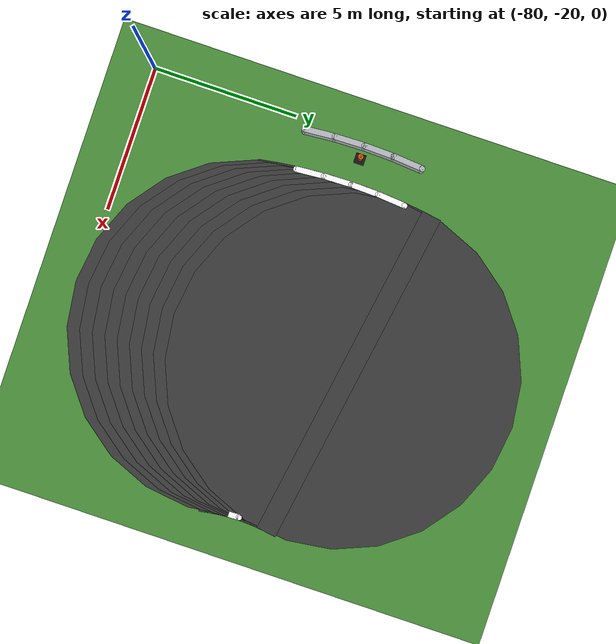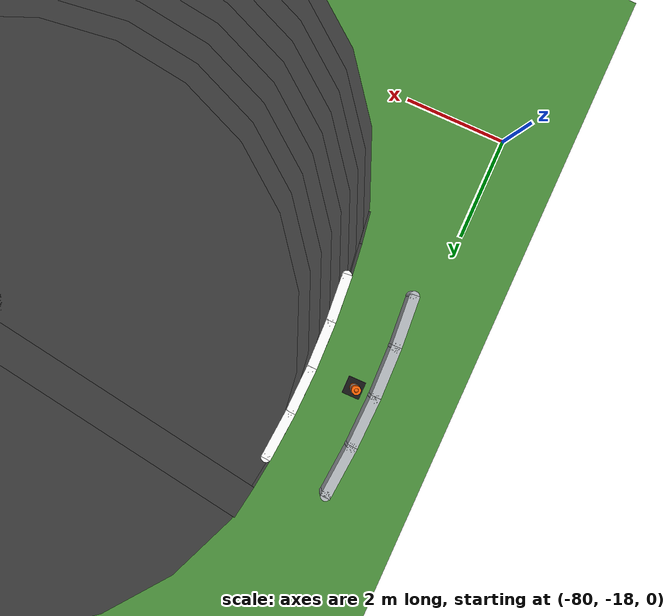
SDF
<sdf version="1.6">
 <world name="sem_silesia_ring_2026">
  <model name="ground_plane">
   <static>true</static>
   <link name="link">
    <collision name="collision">
     <geometry><plane><normal>0 0 1</normal><size>600 600</size></plane></geometry>
     <surface><friction><ode><mu>0.6</mu><mu2>0.6</mu2></ode></friction></surface>
    </collision>
    <visual name="visual">
     <geometry><plane><normal>0 0 1</normal><size>600 600</size></plane></geometry>
     <material><ambient>0.28 0.55 0.22 1</ambient><diffuse>0.28 0.55 0.22 1</diffuse></material>
    </visual>
   </link>
  </model>
  <model name="road_L_s40">
   <static>true</static>
   <pose>-72.3461 -10.5446 0.0030 0 0 4.5553</pose>
   <link name="link">
    <visual name="v">
     <geometry><box><size>0.6957 12.0000 0.0060</size></box></geometry>
     <material><ambient>0.22 0.22 0.22 1</ambient><diffuse>0.22 0.22 0.22 1</diffuse></material>
    </visual>
    <collision name="c">
     <geometry><box><size>0.6957 12.0000 0.0060</size></box></geometry>
     <surface><friction><ode><mu>0.9</mu><mu2>0.9</mu2></ode></friction></surface>
    </collision>
   </link>
  </model>
  <model name="road_L_jnt41">
   <static>true</static>
   <pose>-72.3784 -10.7603 0.0030 0 0 0</pose>
   <link name="link">
    <visual name="v">
     <geometry><cylinder><radius>6.0000</radius><length>0.0060</length></cylinder></geometry>
     <material><ambient>0.22 0.22 0.22 1</ambient><diffuse>0.22 0.22 0.22 1</diffuse></material>
    </visual>
    <collision name="c">
     <geometry><cylinder><radius>6.0000</radius><length>0.0060</length></cylinder></geometry>
     <surface><friction><ode><mu>0.9</mu><mu2>0.9</mu2></ode></friction></surface>
    </collision>
   </link>
  </model>
  <model name="road_L_s41">
   <static>true</static>
   <pose>-72.4068 -10.9766 0.0030 0 0 4.5902</pose>
   <link name="link">
    <visual name="v">
     <geometry><box><size>0.6957 12.0000 0.0060</size></box></geometry>
     <material><ambient>0.22 0.22 0.22 1</ambient><diffuse>0.22 0.22 0.22 1</diffuse></material>
    </visual>
    <collision name="c">
     <geometry><box><size>0.6957 12.0000 0.0060</size></box></geometry>
     <surface><friction><ode><mu>0.9</mu><mu2>0.9</mu2></ode></friction></surface>
    </collision>
   </link>
  </model>
  <model name="road_L_jnt42">
   <static>true</static>
   <pose>-72.4315 -11.1934 0.0030 0 0 0</pose>
   <link name="link">
    <visual name="v">
     <geometry><cylinder><radius>6.0000</radius><length>0.0060</length></cylinder></geometry>
     <material><ambient>0.22 0.22 0.22 1</ambient><diffuse>0.22 0.22 0.22 1</diffuse></material>
    </visual>
    <collision name="c">
     <geometry><cylinder><radius>6.0000</radius><length>0.0060</length></cylinder></geometry>
     <surface><friction><ode><mu>0.9</mu><mu2>0.9</mu2></ode></friction></surface>
    </collision>
   </link>
  </model>
  <model name="road_L_s42">
   <static>true</static>
   <pose>-72.4524 -11.4106 0.0030 0 0 4.6251</pose>
   <link name="link">
    <visual name="v">
     <geometry><box><size>0.6957 12.0000 0.0060</size></box></geometry>
     <material><ambient>0.22 0.22 0.22 1</ambient><diffuse>0.22 0.22 0.22 1</diffuse></material>
    </visual>
    <collision name="c">
     <geometry><box><size>0.6957 12.0000 0.0060</size></box></geometry>
     <surface><friction><ode><mu>0.9</mu><mu2>0.9</mu2></ode></friction></surface>
    </collision>
   </link>
  </model>
  <model name="road_L_jnt43">
   <static>true</static>
   <pose>-72.4696 -11.6280 0.0030 0 0 0</pose>
   <link name="link">
    <visual name="v">
     <geometry><cylinder><radius>6.0000</radius><length>0.0060</length></cylinder></geometry>
     <material><ambient>0.22 0.22 0.22 1</ambient><diffuse>0.22 0.22 0.22 1</diffuse></material>
    </visual>
    <collision name="c">
     <geometry><cylinder><radius>6.0000</radius><length>0.0060</length></cylinder></geometry>
     <surface><friction><ode><mu>0.9</mu><mu2>0.9</mu2></ode></friction></surface>
    </collision>
   </link>
  </model>
  <model name="road_L_s43">
   <static>true</static>
   <pose>-72.4829 -11.8458 0.0030 0 0 4.6600</pose>
   <link name="link">
    <visual name="v">
     <geometry><box><size>0.6957 12.0000 0.0060</size></box></geometry>
     <material><ambient>0.22 0.22 0.22 1</ambient><diffuse>0.22 0.22 0.22 1</diffuse></material>
    </visual>
    <collision name="c">
     <geometry><box><size>0.6957 12.0000 0.0060</size></box></geometry>
     <surface><friction><ode><mu>0.9</mu><mu2>0.9</mu2></ode></friction></surface>
    </collision>
   </link>
  </model>
  <model name="road_L_jnt44">
   <static>true</static>
   <pose>-72.4924 -12.0638 0.0030 0 0 0</pose>
   <link name="link">
    <visual name="v">
     <geometry><cylinder><radius>6.0000</radius><length>0.0060</length></cylinder></geometry>
     <material><ambient>0.22 0.22 0.22 1</ambient><diffuse>0.22 0.22 0.22 1</diffuse></material>
    </visual>
    <collision name="c">
     <geometry><cylinder><radius>6.0000</radius><length>0.0060</length></cylinder></geometry>
     <surface><friction><ode><mu>0.9</mu><mu2>0.9</mu2></ode></friction></surface>
    </collision>
   </link>
  </model>
  <model name="road_L_s44">
   <static>true</static>
   <pose>-72.4981 -12.2818 0.0030 0 0 4.6949</pose>
   <link name="link">
    <visual name="v">
     <geometry><box><size>0.6957 12.0000 0.0060</size></box></geometry>
     <material><ambient>0.22 0.22 0.22 1</ambient><diffuse>0.22 0.22 0.22 1</diffuse></material>
    </visual>
    <collision name="c">
     <geometry><box><size>0.6957 12.0000 0.0060</size></box></geometry>
     <surface><friction><ode><mu>0.9</mu><mu2>0.9</mu2></ode></friction></surface>
    </collision>
   </link>
  </model>
  <model name="road_L_jnt45">
   <static>true</static>
   <pose>-72.5000 -12.5000 0.0030 0 0 0</pose>
   <link name="link">
    <visual name="v">
     <geometry><cylinder><radius>6.0000</radius><length>0.0060</length></cylinder></geometry>
     <material><ambient>0.22 0.22 0.22 1</ambient><diffuse>0.22 0.22 0.22 1</diffuse></material>
    </visual>
    <collision name="c">
     <geometry><cylinder><radius>6.0000</radius><length>0.0060</length></cylinder></geometry>
     <surface><friction><ode><mu>0.9</mu><mu2>0.9</mu2></ode></friction></surface>
    </collision>
   </link>
  </model>
  <model name="road_L_s45">
   <static>true</static>
   <pose>-72.4981 -12.7182 0.0030 0 0 4.7298</pose>
   <link name="link">
    <visual name="v">
     <geometry><box><size>0.6957 12.0000 0.0060</size></box></geometry>
     <material><ambient>0.22 0.22 0.22 1</ambient><diffuse>0.22 0.22 0.22 1</diffuse></material>
    </visual>
    <collision name="c">
     <geometry><box><size>0.6957 12.0000 0.0060</size></box></geometry>
     <surface><friction><ode><mu>0.9</mu><mu2>0.9</mu2></ode></friction></surface>
    </collision>
   </link>
  </model>
  <model name="road_L_jnt46">
   <static>true</static>
   <pose>-72.4924 -12.9362 0.0030 0 0 0</pose>
   <link name="link">
    <visual name="v">
     <geometry><cylinder><radius>6.0000</radius><length>0.0060</length></cylinder></geometry>
     <material><ambient>0.22 0.22 0.22 1</ambient><diffuse>0.22 0.22 0.22 1</diffuse></material>
    </visual>
    <collision name="c">
     <geometry><cylinder><radius>6.0000</radius><length>0.0060</length></cylinder></geometry>
     <surface><friction><ode><mu>0.9</mu><mu2>0.9</mu2></ode></friction></surface>
    </collision>
   </link>
  </model>
  <model name="road_L_s46">
   <static>true</static>
   <pose>-72.4829 -13.1542 0.0030 0 0 4.7647</pose>
   <link name="link">
    <visual name="v">
     <geometry><box><size>0.6957 12.0000 0.0060</size></box></geometry>
     <material><ambient>0.22 0.22 0.22 1</ambient><diffuse>0.22 0.22 0.22 1</diffuse></material>
    </visual>
    <collision name="c">
     <geometry><box><size>0.6957 12.0000 0.0060</size></box></geometry>
     <surface><friction><ode><mu>0.9</mu><mu2>0.9</mu2></ode></friction></surface>
    </collision>
   </link>
  </model>
  <model name="road_L_jnt47">
   <static>true</static>
   <pose>-72.4696 -13.3720 0.0030 0 0 0</pose>
   <link name="link">
    <visual name="v">
     <geometry><cylinder><radius>6.0000</radius><length>0.0060</length></cylinder></geometry>
     <material><ambient>0.22 0.22 0.22 1</ambient><diffuse>0.22 0.22 0.22 1</diffuse></material>
    </visual>
    <collision name="c">
     <geometry><cylinder><radius>6.0000</radius><length>0.0060</length></cylinder></geometry>
     <surface><friction><ode><mu>0.9</mu><mu2>0.9</mu2></ode></friction></surface>
    </collision>
   </link>
  </model>
  <model name="road_L_s47">
   <static>true</static>
   <pose>-72.4524 -13.5894 0.0030 0 0 4.7997</pose>
   <link name="link">
    <visual name="v">
     <geometry><box><size>0.6957 12.0000 0.0060</size></box></geometry>
     <material><ambient>0.22 0.22 0.22 1</ambient><diffuse>0.22 0.22 0.22 1</diffuse></material>
    </visual>
    <collision name="c">
     <geometry><box><size>0.6957 12.0000 0.0060</size></box></geometry>
     <surface><friction><ode><mu>0.9</mu><mu2>0.9</mu2></ode></friction></surface>
    </collision>
   </link>
  </model>
  <model name="road_L_jnt48">
   <static>true</static>
   <pose>-72.4315 -13.8066 0.0030 0 0 0</pose>
   <link name="link">
    <visual name="v">
     <geometry><cylinder><radius>6.0000</radius><length>0.0060</length></cylinder></geometry>
     <material><ambient>0.22 0.22 0.22 1</ambient><diffuse>0.22 0.22 0.22 1</diffuse></material>
    </visual>
    <collision name="c">
     <geometry><cylinder><radius>6.0000</radius><length>0.0060</length></cylinder></geometry>
     <surface><friction><ode><mu>0.9</mu><mu2>0.9</mu2></ode></friction></surface>
    </collision>
   </link>
  </model>
  <model name="road_L_s48">
   <static>true</static>
   <pose>-72.4068 -14.0234 0.0030 0 0 4.8346</pose>
   <link name="link">
    <visual name="v">
     <geometry><box><size>0.6957 12.0000 0.0060</size></box></geometry>
     <material><ambient>0.22 0.22 0.22 1</ambient><diffuse>0.22 0.22 0.22 1</diffuse></material>
    </visual>
    <collision name="c">
     <geometry><box><size>0.6957 12.0000 0.0060</size></box></geometry>
     <surface><friction><ode><mu>0.9</mu><mu2>0.9</mu2></ode></friction></surface>
    </collision>
   </link>
  </model>
  <model name="road_L_jnt49">
   <static>true</static>
   <pose>-72.3784 -14.2397 0.0030 0 0 0</pose>
   <link name="link">
    <visual name="v">
     <geometry><cylinder><radius>6.0000</radius><length>0.0060</length></cylinder></geometry>
     <material><ambient>0.22 0.22 0.22 1</ambient><diffuse>0.22 0.22 0.22 1</diffuse></material>
    </visual>
    <collision name="c">
     <geometry><cylinder><radius>6.0000</radius><length>0.0060</length></cylinder></geometry>
     <surface><friction><ode><mu>0.9</mu><mu2>0.9</mu2></ode></friction></surface>
    </collision>
   </link>
  </model>
  <model name="road_L_s49">
   <static>true</static>
   <pose>-72.3461 -14.4554 0.0030 0 0 4.8695</pose>
   <link name="link">
    <visual name="v">
     <geometry><box><size>0.6957 12.0000 0.0060</size></box></geometry>
     <material><ambient>0.22 0.22 0.22 1</ambient><diffuse>0.22 0.22 0.22 1</diffuse></material>
    </visual>
    <collision name="c">
     <geometry><box><size>0.6957 12.0000 0.0060</size></box></geometry>
     <surface><friction><ode><mu>0.9</mu><mu2>0.9</mu2></ode></friction></surface>
    </collision>
   </link>
  </model>
  <model name="wl_Lo_jnt28">
   <static>true</static>
   <pose>-78.2992 -10.5767 0.0050 0 0 0</pose>
   <link name="link">
    <visual name="v">
     <geometry><cylinder><radius>0.1000</radius><length>0.0040</length></cylinder></geometry>
     <material><ambient>1 1 1 1</ambient><diffuse>1 1 1 1</diffuse></material>
    </visual>
    <collision name="c">
     <geometry><cylinder><radius>0.1000</radius><length>0.0040</length></cylinder></geometry>
     <surface><friction><ode><mu>0.9</mu><mu2>0.9</mu2></ode></friction></surface>
    </collision>
   </link>
  </model>
  <model name="wl_Lo_s28">
   <static>true</static>
   <pose>-78.3433 -11.0564 0.0050 0 0 4.6338</pose>
   <link name="link">
    <visual name="v">
     <geometry><box><size>1.0185 0.2000 0.0040</size></box></geometry>
     <material><ambient>1 1 1 1</ambient><diffuse>1 1 1 1</diffuse></material>
    </visual>
    <collision name="c">
     <geometry><box><size>1.0185 0.2000 0.0040</size></box></geometry>
     <surface><friction><ode><mu>0.9</mu><mu2>0.9</mu2></ode></friction></surface>
    </collision>
   </link>
  </model>
  <model name="wl_Lo_jnt29">
   <static>true</static>
   <pose>-78.3748 -11.5370 0.0050 0 0 0</pose>
   <link name="link">
    <visual name="v">
     <geometry><cylinder><radius>0.1000</radius><length>0.0040</length></cylinder></geometry>
     <material><ambient>1 1 1 1</ambient><diffuse>1 1 1 1</diffuse></material>
    </visual>
    <collision name="c">
     <geometry><cylinder><radius>0.1000</radius><length>0.0040</length></cylinder></geometry>
     <surface><friction><ode><mu>0.9</mu><mu2>0.9</mu2></ode></friction></surface>
    </collision>
   </link>
  </model>
  <model name="wl_Lo_s29">
   <static>true</static>
   <pose>-78.3937 -12.0183 0.0050 0 0 4.6862</pose>
   <link name="link">
    <visual name="v">
     <geometry><box><size>1.0185 0.2000 0.0040</size></box></geometry>
     <material><ambient>1 1 1 1</ambient><diffuse>1 1 1 1</diffuse></material>
    </visual>
    <collision name="c">
     <geometry><box><size>1.0185 0.2000 0.0040</size></box></geometry>
     <surface><friction><ode><mu>0.9</mu><mu2>0.9</mu2></ode></friction></surface>
    </collision>
   </link>
  </model>
  <model name="wl_Lo_jnt30">
   <static>true</static>
   <pose>-78.4000 -12.5000 0.0050 0 0 0</pose>
   <link name="link">
    <visual name="v">
     <geometry><cylinder><radius>0.1000</radius><length>0.0040</length></cylinder></geometry>
     <material><ambient>1 1 1 1</ambient><diffuse>1 1 1 1</diffuse></material>
    </visual>
    <collision name="c">
     <geometry><cylinder><radius>0.1000</radius><length>0.0040</length></cylinder></geometry>
     <surface><friction><ode><mu>0.9</mu><mu2>0.9</mu2></ode></friction></surface>
    </collision>
   </link>
  </model>
  <model name="wl_Lo_s30">
   <static>true</static>
   <pose>-78.3937 -12.9817 0.0050 0 0 4.7386</pose>
   <link name="link">
    <visual name="v">
     <geometry><box><size>1.0185 0.2000 0.0040</size></box></geometry>
     <material><ambient>1 1 1 1</ambient><diffuse>1 1 1 1</diffuse></material>
    </visual>
    <collision name="c">
     <geometry><box><size>1.0185 0.2000 0.0040</size></box></geometry>
     <surface><friction><ode><mu>0.9</mu><mu2>0.9</mu2></ode></friction></surface>
    </collision>
   </link>
  </model>
  <model name="wl_Lo_jnt31">
   <static>true</static>
   <pose>-78.3748 -13.4630 0.0050 0 0 0</pose>
   <link name="link">
    <visual name="v">
     <geometry><cylinder><radius>0.1000</radius><length>0.0040</length></cylinder></geometry>
     <material><ambient>1 1 1 1</ambient><diffuse>1 1 1 1</diffuse></material>
    </visual>
    <collision name="c">
     <geometry><cylinder><radius>0.1000</radius><length>0.0040</length></cylinder></geometry>
     <surface><friction><ode><mu>0.9</mu><mu2>0.9</mu2></ode></friction></surface>
    </collision>
   </link>
  </model>
  <model name="wl_Lo_s31">
   <static>true</static>
   <pose>-78.3433 -13.9436 0.0050 0 0 4.7909</pose>
   <link name="link">
    <visual name="v">
     <geometry><box><size>1.0185 0.2000 0.0040</size></box></geometry>
     <material><ambient>1 1 1 1</ambient><diffuse>1 1 1 1</diffuse></material>
    </visual>
    <collision name="c">
     <geometry><box><size>1.0185 0.2000 0.0040</size></box></geometry>
     <surface><friction><ode><mu>0.9</mu><mu2>0.9</mu2></ode></friction></surface>
    </collision>
   </link>
  </model>
  <model name="wl_Lo_jnt32">
   <static>true</static>
   <pose>-78.2992 -14.4233 0.0050 0 0 0</pose>
   <link name="link">
    <visual name="v">
     <geometry><cylinder><radius>0.1000</radius><length>0.0040</length></cylinder></geometry>
     <material><ambient>1 1 1 1</ambient><diffuse>1 1 1 1</diffuse></material>
    </visual>
    <collision name="c">
     <geometry><cylinder><radius>0.1000</radius><length>0.0040</length></cylinder></geometry>
     <surface><friction><ode><mu>0.9</mu><mu2>0.9</mu2></ode></friction></surface>
    </collision>
   </link>
  </model>
  <model name="wl_Li_jnt30">
   <static>true</static>
   <pose>-66.6000 -12.5000 0.0050 0 0 0</pose>
   <link name="link">
    <visual name="v">
     <geometry><cylinder><radius>0.1000</radius><length>0.0040</length></cylinder></geometry>
     <material><ambient>1 1 1 1</ambient><diffuse>1 1 1 1</diffuse></material>
    </visual>
    <collision name="c">
     <geometry><cylinder><radius>0.1000</radius><length>0.0040</length></cylinder></geometry>
     <surface><friction><ode><mu>0.9</mu><mu2>0.9</mu2></ode></friction></surface>
    </collision>
   </link>
  </model>
  <model name="wl_Li_s30">
   <static>true</static>
   <pose>-66.5977 -12.6728 0.0050 0 0 4.7386</pose>
   <link name="link">
    <visual name="v">
     <geometry><box><size>0.4008 0.2000 0.0040</size></box></geometry>
     <material><ambient>1 1 1 1</ambient><diffuse>1 1 1 1</diffuse></material>
    </visual>
    <collision name="c">
     <geometry><box><size>0.4008 0.2000 0.0040</size></box></geometry>
     <surface><friction><ode><mu>0.9</mu><mu2>0.9</mu2></ode></friction></surface>
    </collision>
   </link>
  </model>
  <model name="arm_Lo_jnt28">
   <static>true</static>
   <pose>-79.5921 -10.4408 0.2250 0 0 0</pose>
   <link name="link">
    <visual name="v">
     <geometry><cylinder><radius>0.1000</radius><length>0.4500</length></cylinder></geometry>
     <material><ambient>0.70 0.72 0.74 1</ambient><diffuse>0.70 0.72 0.74 1</diffuse></material>
    </visual>
    <collision name="c">
     <geometry><cylinder><radius>0.1000</radius><length>0.4500</length></cylinder></geometry>
     <surface><friction><ode><mu>0.9</mu><mu2>0.9</mu2></ode></friction></surface>
    </collision>
   </link>
  </model>
  <model name="arm_Lo_s28">
   <static>true</static>
   <pose>-79.6393 -10.9544 0.2250 0 0 4.6338</pose>
   <link name="link">
    <visual name="v">
     <geometry><box><size>1.0866 0.2000 0.4500</size></box></geometry>
     <material><ambient>0.70 0.72 0.74 1</ambient><diffuse>0.70 0.72 0.74 1</diffuse></material>
    </visual>
    <collision name="c">
     <geometry><box><size>1.0866 0.2000 0.4500</size></box></geometry>
     <surface><friction><ode><mu>0.9</mu><mu2>0.9</mu2></ode></friction></surface>
    </collision>
   </link>
  </model>
  <model name="arm_Lo_jnt29">
   <static>true</static>
   <pose>-79.6730 -11.4690 0.2250 0 0 0</pose>
   <link name="link">
    <visual name="v">
     <geometry><cylinder><radius>0.1000</radius><length>0.4500</length></cylinder></geometry>
     <material><ambient>0.70 0.72 0.74 1</ambient><diffuse>0.70 0.72 0.74 1</diffuse></material>
    </visual>
    <collision name="c">
     <geometry><cylinder><radius>0.1000</radius><length>0.4500</length></cylinder></geometry>
     <surface><friction><ode><mu>0.9</mu><mu2>0.9</mu2></ode></friction></surface>
    </collision>
   </link>
  </model>
  <model name="arm_Lo_s29">
   <static>true</static>
   <pose>-79.6932 -11.9843 0.2250 0 0 4.6862</pose>
   <link name="link">
    <visual name="v">
     <geometry><box><size>1.0866 0.2000 0.4500</size></box></geometry>
     <material><ambient>0.70 0.72 0.74 1</ambient><diffuse>0.70 0.72 0.74 1</diffuse></material>
    </visual>
    <collision name="c">
     <geometry><box><size>1.0866 0.2000 0.4500</size></box></geometry>
     <surface><friction><ode><mu>0.9</mu><mu2>0.9</mu2></ode></friction></surface>
    </collision>
   </link>
  </model>
  <model name="arm_Lo_jnt30">
   <static>true</static>
   <pose>-79.7000 -12.5000 0.2250 0 0 0</pose>
   <link name="link">
    <visual name="v">
     <geometry><cylinder><radius>0.1000</radius><length>0.4500</length></cylinder></geometry>
     <material><ambient>0.70 0.72 0.74 1</ambient><diffuse>0.70 0.72 0.74 1</diffuse></material>
    </visual>
    <collision name="c">
     <geometry><cylinder><radius>0.1000</radius><length>0.4500</length></cylinder></geometry>
     <surface><friction><ode><mu>0.9</mu><mu2>0.9</mu2></ode></friction></surface>
    </collision>
   </link>
  </model>
  <model name="arm_Lo_s30">
   <static>true</static>
   <pose>-79.6932 -13.0157 0.2250 0 0 4.7386</pose>
   <link name="link">
    <visual name="v">
     <geometry><box><size>1.0866 0.2000 0.4500</size></box></geometry>
     <material><ambient>0.70 0.72 0.74 1</ambient><diffuse>0.70 0.72 0.74 1</diffuse></material>
    </visual>
    <collision name="c">
     <geometry><box><size>1.0866 0.2000 0.4500</size></box></geometry>
     <surface><friction><ode><mu>0.9</mu><mu2>0.9</mu2></ode></friction></surface>
    </collision>
   </link>
  </model>
  <model name="arm_Lo_jnt31">
   <static>true</static>
   <pose>-79.6730 -13.5310 0.2250 0 0 0</pose>
   <link name="link">
    <visual name="v">
     <geometry><cylinder><radius>0.1000</radius><length>0.4500</length></cylinder></geometry>
     <material><ambient>0.70 0.72 0.74 1</ambient><diffuse>0.70 0.72 0.74 1</diffuse></material>
    </visual>
    <collision name="c">
     <geometry><cylinder><radius>0.1000</radius><length>0.4500</length></cylinder></geometry>
     <surface><friction><ode><mu>0.9</mu><mu2>0.9</mu2></ode></friction></surface>
    </collision>
   </link>
  </model>
  <model name="arm_Lo_s31">
   <static>true</static>
   <pose>-79.6393 -14.0456 0.2250 0 0 4.7909</pose>
   <link name="link">
    <visual name="v">
     <geometry><box><size>1.0866 0.2000 0.4500</size></box></geometry>
     <material><ambient>0.70 0.72 0.74 1</ambient><diffuse>0.70 0.72 0.74 1</diffuse></material>
    </visual>
    <collision name="c">
     <geometry><box><size>1.0866 0.2000 0.4500</size></box></geometry>
     <surface><friction><ode><mu>0.9</mu><mu2>0.9</mu2></ode></friction></surface>
    </collision>
   </link>
  </model>
  <model name="arm_Lo_jnt32">
   <static>true</static>
   <pose>-79.5921 -14.5592 0.2250 0 0 0</pose>
   <link name="link">
    <visual name="v">
     <geometry><cylinder><radius>0.1000</radius><length>0.4500</length></cylinder></geometry>
     <material><ambient>0.70 0.72 0.74 1</ambient><diffuse>0.70 0.72 0.74 1</diffuse></material>
    </visual>
    <collision name="c">
     <geometry><cylinder><radius>0.1000</radius><length>0.4500</length></cylinder></geometry>
     <surface><friction><ode><mu>0.9</mu><mu2>0.9</mu2></ode></friction></surface>
    </collision>
   </link>
  </model>
  <model name="cn_Lo_4">
   <static>true</static>
   <pose>-79.3000 -12.5000 0 0 0 0</pose>
   <link name="link">
    <visual name="base">
     <pose>0 0 0.03 0 0 0</pose>
     <geometry><box><size>0.35 0.35 0.06</size></box></geometry>
     <material><ambient>0.08 0.08 0.08 1</ambient><diffuse>0.08 0.08 0.08 1</diffuse></material>
    </visual>
    <visual name="body">
     <pose>0 0 0.30 0 0 0</pose>
     <geometry><cylinder><radius>0.09</radius><length>0.50</length></cylinder></geometry>
     <material><ambient>1.0 0.38 0.0 1</ambient><diffuse>1.0 0.38 0.0 1</diffuse></material>
    </visual>
    <visual name="stripe">
     <pose>0 0 0.32 0 0 0</pose>
     <geometry><cylinder><radius>0.095</radius><length>0.12</length></cylinder></geometry>
     <material><ambient>1 1 1 1</ambient><diffuse>1 1 1 1</diffuse></material>
    </visual>
    <visual name="tip">
     <pose>0 0 0.57 0 0 0</pose>
     <geometry><sphere><radius>0.04</radius></sphere></geometry>
     <material><ambient>1.0 0.38 0.0 1</ambient><diffuse>1.0 0.38 0.0 1</diffuse></material>
    </visual>
    <collision name="c">
     <pose>0 0 0.28 0 0 0</pose>
     <geometry><cylinder><radius>0.09</radius><length>0.56</length></cylinder></geometry>
    </collision>
   </link>
  </model>
 </world>
</sdf>
